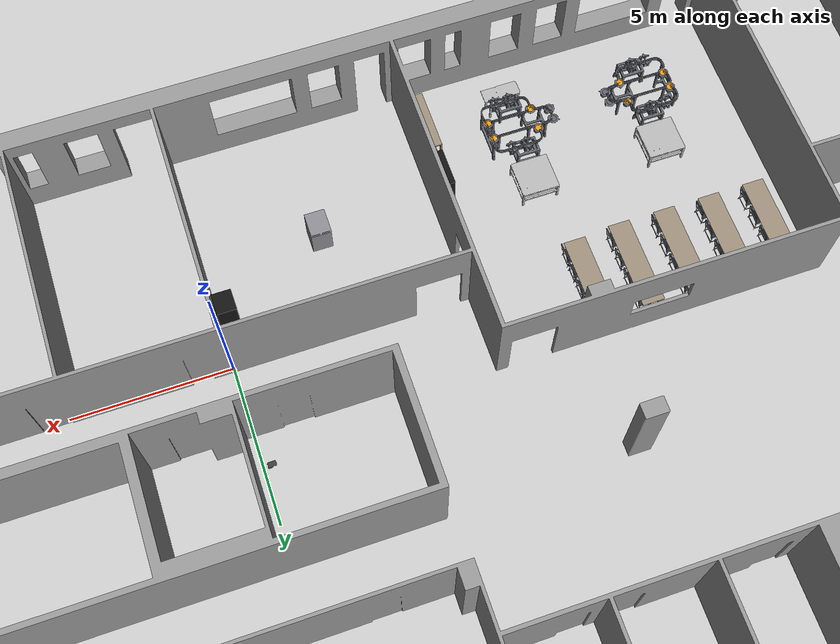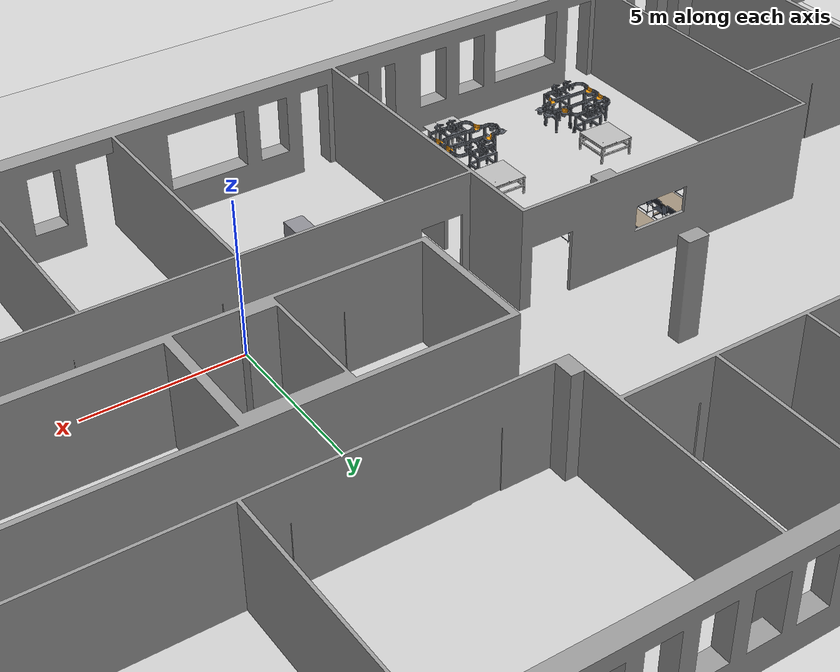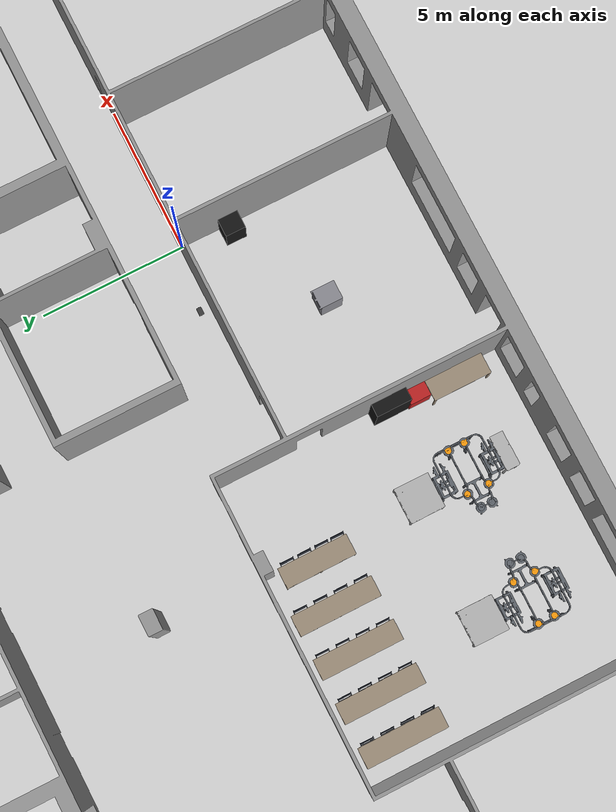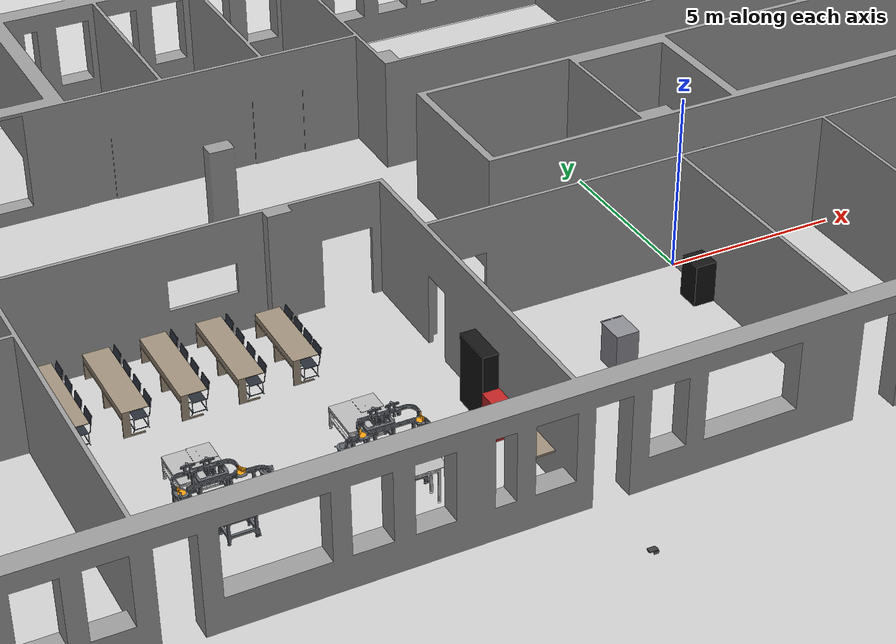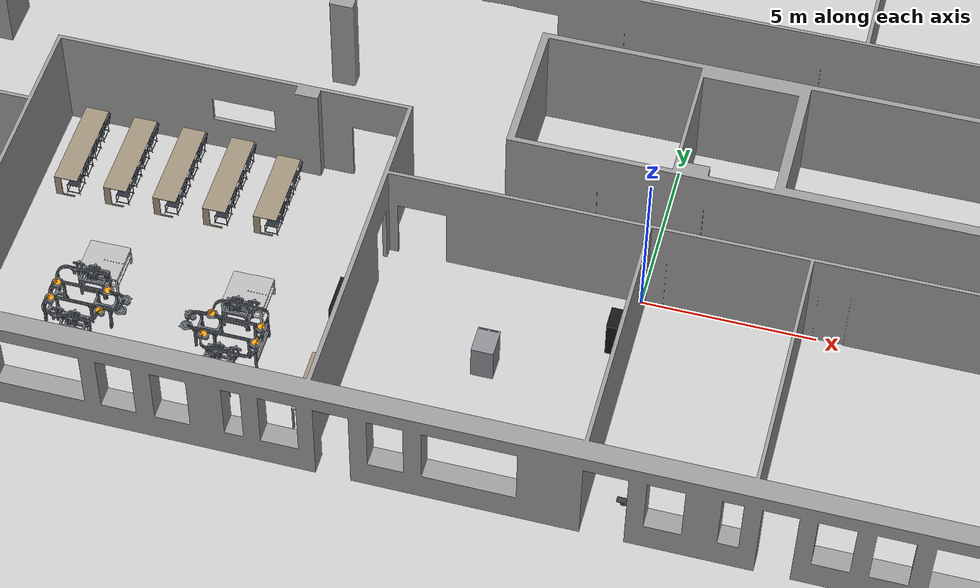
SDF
<sdf version="1.4">
 <world name="mfja_3rd_floor">
  <physics name="5ms" type="ignored">
   <max_step_size>0.005</max_step_size>
   <real_time_factor>1.0</real_time_factor>
  </physics>
  <plugin filename="gz-sim-physics-system" name="gz::sim::systems::Physics"/>
  <plugin filename="gz-sim-user-commands-system" name="gz::sim::systems::UserCommands"/>
  <plugin filename="gz-sim-scene-broadcaster-system" name="gz::sim::systems::SceneBroadcaster"/>
  <plugin filename="gz-sim-sensors-system" name="gz::sim::systems::Sensors">
   <render_engine>ogre2</render_engine>
  </plugin>
  <plugin filename="gz-sim-imu-system" name="gz::sim::systems::Imu"/>
  <gravity>0.0 0.0 -9.8</gravity>
  <scene>
   <ambient>0.4 0.4 0.4 1</ambient>
   <background>0.7 0.7 0.7 1</background>
   <shadows>false</shadows>
   <grid>false</grid>
   <origin_visual>false</origin_visual>
  </scene>
  <include><uri>model://sun</uri></include>
  <include><uri>model://ground_plane</uri></include>
  <model name="mfja_3rd_floor_walls">
   <include><uri>model://mfja_3rd_floor</uri></include>
   <pose>0 0 0 0 0 -1.57</pose>
  </model>
  <include>
   <uri>model://kuka_table</uri>
   <name>kuka_table_1</name>
   <pose>-10.6096 -6.0 0.5 -1.57 0 1.57</pose>
  </include>
  <include>
   <uri>model://table_yaskawa</uri>
   <name>yaskawa_table_1</name>
   <pose>-10.6436 -2.97 0.5 0 0 1.57</pose>
  </include>
  <include>
   <uri>model://table_yaskawa</uri>
   <name>yaskawa_table_2</name>
   <pose>-14.9162 -2.97 0.5 0 0 1.57</pose>
  </include>
  <include>
   <uri>model://cell_static_gauche_final</uri>
   <name>cell_static_gauche_final_1</name>
   <pose>-9.65 -3.6 0.317 0 0 3.14</pose>
  </include>
  <include>
   <uri>model://cell_static_droit_final</uri>
   <name>room315_cell_static_droit_final_1</name>
   <pose>-15.9718 -5.8001 0.32 0.0 0.0 0.0</pose>
  </include>
  <include>
   <uri>model://cell_path_left</uri>
   <name>room315_cell_path_left_1</name>
   <pose>-11.865 -5.56 1.05 0 0 0</pose>
  </include>
  <include>
   <uri>model://cell_path_right</uri>
   <name>room315_cell_path_right_1</name>
   <pose>-13.7598 -3.833 1.053 0 0 3.14</pose>
  </include>
  <include>
   <uri>model://room315_shuttle</uri>
   <name>room315_right_shuttle_1</name>
   <pose>0 0 -10 0 0 0</pose>
  </include>
  <include>
   <uri>model://room315_shuttle</uri>
   <name>room315_right_shuttle_2</name>
   <pose>0 0 -10 0 0 0</pose>
  </include>
  <include>
   <uri>model://room315_shuttle</uri>
   <name>room315_right_shuttle_3</name>
   <pose>0 0 -10 0 0 0</pose>
  </include>
  <include>
   <uri>model://room315_shuttle</uri>
   <name>room315_right_shuttle_4</name>
   <pose>0 0 -10 0 0 0</pose>
  </include>
  <include>
   <uri>model://room315_shuttle</uri>
   <name>room315_left_shuttle_1</name>
   <pose>0 0 -10 0 0 0</pose>
  </include>
  <include>
   <uri>model://rail_switch_3pos_droit_static_black</uri>
   <name>static_droit_switch_1</name>
   <pose>-13.770 -4.505 1.053 0 0 1.02</pose>
  </include>
  <include>
   <uri>model://rail_switch_3pos_droit_static_black</uri>
   <name>static_droit_switch_2</name>
   <pose>-13.775 -4.88 1.053 0 0 -0.02</pose>
  </include>
  <include>
   <uri>model://rail_switch_3pos_droit_static_black</uri>
   <name>static_gauche_switch_1</name>
   <pose>-11.848 -4.515 1.05 0 0 3.13319</pose>
  </include>
  <include>
   <uri>model://rail_switch_3pos_droit_static_black</uri>
   <name>static_gauche_switch_2</name>
   <pose>-11.849 -4.885 1.05 0 0 -2.13</pose>
  </include>
  <include>
   <uri>model://rail_switch_3pos_droit</uri>
   <name>A3_droit_switch</name>
   <pose>-15.802 -4.97 1.053 0 0 0.50666</pose>
  </include>
  <include>
   <uri>model://rail_switch_3pos_droit</uri>
   <name>A4_droit_switch</name>
   <pose>-14.34 -5.065 1.053 0 0 3.13</pose>
  </include>
  <include>
   <uri>model://rail_switch_3pos_droit</uri>
   <name>A1_droit_switch</name>
   <pose>-14.3368 -4.32 1.053 0 0 -2.1</pose>
  </include>
  <include>
   <uri>model://rail_switch_3pos_droit</uri>
   <name>A2_droit_switch</name>
   <pose>-15.802 -4.41 1.053 0 0 0.50666</pose>
  </include>
  <include>
   <uri>model://rail_switch_3pos_droit</uri>
   <name>A4_gauche_switch</name>
   <pose>-9.822 -4.982 1.05 0 0 -2.63653</pose>
  </include>
  <include>
   <uri>model://rail_switch_3pos_droit</uri>
   <name>A3_gauche_switch</name>
   <pose>-11.288 -5.071 1.05 0 0 1.04</pose>
  </include>
  <include>
   <uri>model://rail_switch_3pos_droit</uri>
   <name>A2_gauche_switch</name>
   <pose>-11.285 -4.329 1.05 0 0 -0.025</pose>
  </include>
  <include>
   <uri>model://rail_switch_3pos_droit</uri>
   <name>A1_gauche_switch</name>
   <pose>-9.822 -4.42 1.05 0 0 -2.63653</pose>
  </include>
  <include><uri>model://lab_table</uri><name>lab_table_1</name><pose>-17.0 0.87 0.0 0 0 -1.57</pose></include>
  <include><uri>model://lab_table</uri><name>lab_table_2</name><pose>-15.5 0.87 0.0 0 0 -1.57</pose></include>
  <include><uri>model://lab_table</uri><name>lab_table_3</name><pose>-14.0 0.87 0.0 0 0 -1.57</pose></include>
  <include><uri>model://lab_table</uri><name>lab_table_4</name><pose>-12.5 0.87 0.0 0 0 -1.57</pose></include>
  <include>
   <uri>model://lab_table_240cm</uri>
   <name>lab_table_5</name>
   <pose>-11.0 0.57 0.0 0 0 -1.57</pose>
  </include>
  <include><uri>model://lab_chair</uri><name>lab_chair_1</name><pose>-10.8 -0.15 0.0 0 0 0</pose></include>
  <include><uri>model://lab_chair</uri><name>lab_chair_2</name><pose>-10.8 0.4 0.0 0 0 0</pose></include>
  <include><uri>model://lab_chair</uri><name>lab_chair_3</name><pose>-10.8 1.0 0.0 0 0 0</pose></include>
  <include><uri>model://lab_chair</uri><name>lab_chair_4</name><pose>-10.8 1.6 0.0 0 0 0</pose></include>
  <include><uri>model://lab_chair</uri><name>lab_chair_5</name><pose>-12.3 -0.2 0.0 0 0 0</pose></include>
  <include><uri>model://lab_chair</uri><name>lab_chair_6</name><pose>-12.3 0.5 0.0 0 0 0</pose></include>
  <include><uri>model://lab_chair</uri><name>lab_chair_7</name><pose>-12.3 1.2 0.0 0 0 0</pose></include>
  <include><uri>model://lab_chair</uri><name>lab_chair_8</name><pose>-12.3 1.9 0.0 0 0 0</pose></include>
  <include><uri>model://lab_chair</uri><name>lab_chair_9</name><pose>-13.8 -0.2 0.0 0 0 0</pose></include>
  <include><uri>model://lab_chair</uri><name>lab_chair_10</name><pose>-13.8 0.5 0.0 0 0 0</pose></include>
  <include><uri>model://lab_chair</uri><name>lab_chair_11</name><pose>-13.8 1.2 0.0 0 0 0</pose></include>
  <include><uri>model://lab_chair</uri><name>lab_chair_12</name><pose>-13.8 1.9 0.0 0 0 0</pose></include>
  <include><uri>model://lab_chair</uri><name>lab_chair_13</name><pose>-15.3 -0.2 0.0 0 0 0</pose></include>
  <include><uri>model://lab_chair</uri><name>lab_chair_14</name><pose>-15.3 0.5 0.0 0 0 0</pose></include>
  <include><uri>model://lab_chair</uri><name>lab_chair_15</name><pose>-15.3 1.2 0.0 0 0 0</pose></include>
  <include><uri>model://lab_chair</uri><name>lab_chair_16</name><pose>-15.3 1.9 0.0 0 0 0</pose></include>
  <include><uri>model://lab_chair</uri><name>lab_chair_17</name><pose>-16.8 -0.2 0.0 0 0 0</pose></include>
  <include><uri>model://lab_chair</uri><name>lab_chair_18</name><pose>-16.8 0.5 0.0 0 0 0</pose></include>
  <include><uri>model://lab_chair</uri><name>lab_chair_19</name><pose>-16.8 1.2 0.0 0 0 0</pose></include>
  <include><uri>model://lab_chair</uri><name>lab_chair_20</name><pose>-16.8 1.9 0.0 0 0 0</pose></include>
  <include>
   <uri>model://room314_charging_ergotron</uri>
   <name>room314_charging_ergotron_1</name>
   <pose>-3.7 -3.3 0.0 0 0 1.57</pose>
  </include>
  <include>
   <uri>model://room314_tiagobox</uri>
   <name>room314_tiagobox_1</name>
   <pose>-0.3 -1.66 0.0 0 0 -1.57</pose>
  </include>
  <include>
   <uri>model://room115_closet115</uri>
   <name>room115_closet115_1</name>
   <pose>-7.75 -3.45 0.0 0 0 -1.57</pose>
  </include>
  <include>
   <uri>model://room115_table2000</uri>
   <name>room115_table2000_1</name>
   <pose>-7.85 -5.8 0.0 0 0 -1.57</pose>
  </include>
  <include>
   <uri>model://room115_tool_set</uri>
   <name>room115_tool_set_1</name>
   <pose>-7.75 -4.43 0.0 0 0 -1.57</pose>
  </include>
 </world>
</sdf>

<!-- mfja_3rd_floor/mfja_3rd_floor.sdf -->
<sdf version="1.4">
  <model name="mfja_3rd_floor">
    <static>1</static>
    <link name="link">

      <collision name="colision1">
        <pose>0 0 0 0 0 0</pose>
        <geometry>
          <mesh>
            <uri>model://mfja_3rd_floor/meshes/mfja_3rd_floor_v4.stl</uri>
	    <scale> 1 1 1 </scale>
          </mesh>
        </geometry>
        <surface>
          <bounce />
          <friction>
            <ode />
          </friction>
          <contact>
            <ode />
          </contact>
        </surface>
      </collision>

      <visual name="visual1">
        <pose>0 0 0 0 0 0</pose>
        <geometry>
          <mesh>
            <uri>model://mfja_3rd_floor/meshes/mfja_3rd_floor_v4.stl</uri>
	    <scale> 1 1 1 </scale>
          </mesh>
        </geometry>
        <material>
          <script>
            <uri>file://media/materials/scripts/gazebo.material</uri>
            <name>Gazebo/Grey</name>
          </script>
        </material>
      </visual>

      <velocity_decay>
        <linear>0.000000</linear>
        <angular>0.000000</angular>
      </velocity_decay>
      <self_collide>0</self_collide>
      <kinematic>0</kinematic>
      <gravity>1</gravity>
    </link>
  </model>
</sdf>

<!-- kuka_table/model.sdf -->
<sdf version="1.9">
  <model name="kuka_table">
    <static>true</static>
    <link name="kuka_table_link">
      <visual name="kuka_table_visual">
        <geometry>
          <mesh>
            <uri>model://kuka_table/meshes/kuka_table.stl</uri>
          </mesh>
        </geometry>
      </visual>
      <collision name="kuka_table_collision">
        <geometry>
          <mesh>
            <uri>model://kuka_table/meshes/kuka_table.stl</uri>
          </mesh>
        </geometry>
      </collision>
    </link>
  </model>
</sdf>

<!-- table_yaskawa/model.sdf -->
<sdf version="1.9">
  <model name="table_yaskawa">
    <static>true</static>
    <link name="table_yaskawa_link">
      <visual name="table_yaskawa_visual">
        <geometry>
          <mesh>
            <uri>model://table_yaskawa/meshes/table_yaskawa.stl</uri>
            <scale>0.001 0.001 0.001</scale>
          </mesh>
        </geometry>
      </visual>
      <collision name="table_yaskawa_collision">
        <geometry>
          <mesh>
            <uri>model://table_yaskawa/meshes/table_yaskawa.stl</uri>
            <scale>0.001 0.001 0.001</scale>
          </mesh>
        </geometry>
      </collision>
    </link>
  </model>
</sdf>

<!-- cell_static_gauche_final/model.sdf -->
<sdf version="1.9">
  <model name="cell_static_gauche_final">
    <static>true</static>
    <link name="cell_static_gauche_final_link">
      <visual name="cell_static_gauche_final_visual">
        <geometry>
          <mesh>
            <uri>model://cell_static_gauche_final/meshes/cell_static_gauche_final.STL</uri>
          </mesh>
        </geometry>
        <material>
          <ambient>0.38 0.40 0.43 1</ambient>
          <diffuse>0.38 0.40 0.43 1</diffuse>
          <specular>0.30 0.30 0.30 1</specular>
          <emissive>0 0 0 1</emissive>
        </material>
      </visual>
      <collision name="cell_static_gauche_final_collision">
        <geometry>
          <mesh>
            <uri>model://cell_static_gauche_final/meshes/cell_static_gauche_final.STL</uri>
          </mesh>
        </geometry>
      </collision>
    </link>
  </model>
</sdf>

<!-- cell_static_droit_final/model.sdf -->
<sdf version="1.9">
  <model name="cell_static_droit_final">
    <static>true</static>
    <link name="cell_static_droit_final_link">
      <visual name="cell_static_droit_final_visual">
        <geometry>
          <mesh>
            <uri>model://cell_static_droit_final/meshes/cell_static_droit_final.STL</uri>
          </mesh>
        </geometry>
        <material>
          <ambient>0.38 0.40 0.43 1</ambient>
          <diffuse>0.38 0.40 0.43 1</diffuse>
          <specular>0.30 0.30 0.30 1</specular>
          <emissive>0 0 0 1</emissive>
        </material>
      </visual>
      <collision name="cell_static_droit_final_collision">
        <geometry>
          <mesh>
            <uri>model://cell_static_droit_final/meshes/cell_static_droit_final.STL</uri>
          </mesh>
        </geometry>
      </collision>
    </link>
  </model>
</sdf>

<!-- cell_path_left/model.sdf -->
<sdf version="1.9">
  <model name="cell_path_left">
    <static>true</static>
    <link name="cell_path_left_link">
      <visual name="cell_path_left_visual">
        <geometry>
          <mesh>
            <uri>model://cell_path_left/meshes/CELL_PATH_LEFT.STL</uri>
          </mesh>
        </geometry>
        <material>
          <ambient>0.38 0.40 0.43 1</ambient>
          <diffuse>0.38 0.40 0.43 1</diffuse>
          <specular>0.30 0.30 0.30 1</specular>
          <emissive>0 0 0 1</emissive>
        </material>
      </visual>
      <collision name="cell_path_left_collision">
        <geometry>
          <mesh>
            <uri>model://cell_path_left/meshes/CELL_PATH_LEFT.STL</uri>
          </mesh>
        </geometry>
        <surface>
          <contact>
            <collide_bitmask>0x0001</collide_bitmask>
          </contact>
        </surface>
      </collision>
    </link>
  </model>
</sdf>

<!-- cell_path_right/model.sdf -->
<sdf version="1.9">
  <model name="cell_path_right">
    <static>true</static>
    <link name="cell_path_right_link">
      <visual name="cell_path_right_visual">
        <geometry>
          <mesh>
            <uri>model://cell_path_right/meshes/CELL_PATH_RIGHT.STL</uri>
          </mesh>
        </geometry>
        <material>
          <ambient>0.38 0.40 0.43 1</ambient>
          <diffuse>0.38 0.40 0.43 1</diffuse>
          <specular>0.30 0.30 0.30 1</specular>
          <emissive>0 0 0 1</emissive>
        </material>
      </visual>
      <collision name="cell_path_right_collision">
        <geometry>
          <mesh>
            <uri>model://cell_path_right/meshes/CELL_PATH_RIGHT.STL</uri>
          </mesh>
        </geometry>
        <surface>
          <friction>
            <ode>
              <mu>0.35</mu>
              <mu2>0.35</mu2>
            </ode>
            <bullet>
              <friction>0.35</friction>
              <friction2>0.35</friction2>
              <rolling_friction>0.01</rolling_friction>
            </bullet>
          </friction>
          <contact>
            <collide_bitmask>0x0001</collide_bitmask>
            <ode>
              <kp>2000000</kp>
              <kd>50</kd>
              <max_vel>0.1</max_vel>
              <min_depth>0.001</min_depth>
            </ode>
            <bullet>
              <kp>2000000</kp>
              <kd>50</kd>
            </bullet>
          </contact>
        </surface>
      </collision>
    </link>
  </model>
</sdf>

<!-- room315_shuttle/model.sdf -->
<sdf version="1.9">
  <model name="room315_shuttle">
    <static>false</static>
    <link name="room315_shuttle_link">
      <kinematic>true</kinematic>
      <gravity>false</gravity>
      <pose>0 0 0 0 0 0</pose>
      <inertial>
        <mass>0.1</mass>
        <inertia>
          <ixx>0.001</ixx>
          <ixy>0.0</ixy>
          <ixz>0.0</ixz>
          <iyy>0.001</iyy>
          <iyz>0.0</iyz>
          <izz>0.001</izz>
        </inertia>
      </inertial>
      <visual name="room315_shuttle_visual">
        <pose>-0.25 -0.100000024 -0.078499973 0 0 0</pose>
        <geometry>
          <mesh>
            <uri>model://room315_shuttle/meshes/shuttle.STL</uri>
          </mesh>
        </geometry>
        <material>
          <ambient>0.01 0.01 0.01 1</ambient>
          <diffuse>0.01 0.01 0.01 1</diffuse>
          <specular>0.20 0.20 0.20 1</specular>
          <emissive>0 0 0 1</emissive>
        </material>
      </visual>
      <collision name="room315_shuttle_robot_collision">
        <pose>-0.078417048 0 0 0 0 0</pose>
        <geometry>
          <box>
            <size>0.36 0.22 0.17</size>
          </box>
        </geometry>
        <surface>
          <contact>
            <!-- Visual/kinematic shuttle: ROS-side collision avoidance handles spacing. -->
            <collide_bitmask>0x0000</collide_bitmask>
          </contact>
        </surface>
      </collision>
    </link>
    <plugin
        filename="gz-sim-pose-publisher-system"
        name="gz::sim::systems::PosePublisher">
      <publish_model_pose>true</publish_model_pose>
      <publish_link_pose>true</publish_link_pose>
      <publish_collision_pose>false</publish_collision_pose>
      <publish_visual_pose>false</publish_visual_pose>
      <publish_nested_model_pose>false</publish_nested_model_pose>
      <update_frequency>30</update_frequency>
    </plugin>
  </model>
</sdf>

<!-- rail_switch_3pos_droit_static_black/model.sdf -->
<sdf version="1.9">
  <model name="rail_switch_3pos_droit_static_black">
    <static>true</static>
    <link name="blade_link">
      <visual name="blade_visual">
        <geometry>
          <mesh>
            <uri>model://rail_switch_3pos_droit/meshes/aiguillage3.stl</uri>
            <scale>39.37 39.37 39.37</scale>
          </mesh>
        </geometry>
        <material>
          <ambient>0.38 0.40 0.43 1</ambient>
          <diffuse>0.38 0.40 0.43 1</diffuse>
          <specular>0.30 0.30 0.30 1</specular>
          <emissive>0 0 0 1</emissive>
        </material>
      </visual>
      <collision name="blade_collision">
        <geometry>
          <mesh>
            <uri>model://rail_switch_3pos_droit/meshes/aiguillage3.stl</uri>
            <scale>39.37 39.37 39.37</scale>
          </mesh>
        </geometry>
        <surface>
          <friction>
            <ode>
              <mu>0.35</mu>
              <mu2>0.35</mu2>
            </ode>
            <bullet>
              <friction>0.35</friction>
              <friction2>0.35</friction2>
              <rolling_friction>0.005</rolling_friction>
            </bullet>
          </friction>
          <contact>
            <collide_bitmask>0x0001</collide_bitmask>
            <ode>
              <kp>2000000</kp>
              <kd>50</kd>
              <max_vel>0.1</max_vel>
              <min_depth>0.001</min_depth>
            </ode>
            <bullet>
              <kp>2000000</kp>
              <kd>50</kd>
            </bullet>
          </contact>
        </surface>
      </collision>
    </link>
  </model>
</sdf>

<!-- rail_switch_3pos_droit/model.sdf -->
<sdf version="1.9">
  <model name="rail_switch_3pos_droit">
    <static>true</static>
    <link name="blade_link">
      <kinematic>true</kinematic>
      <gravity>false</gravity>
      <inertial>
        <mass>0.1</mass>
        <inertia>
          <ixx>0.001</ixx>
          <ixy>0.0</ixy>
          <ixz>0.0</ixz>
          <iyy>0.001</iyy>
          <iyz>0.0</iyz>
          <izz>0.001</izz>
        </inertia>
      </inertial>

      <visual name="blade_visual">
        <geometry>
          <mesh>
            <uri>model://rail_switch_3pos_droit/meshes/aiguillage3.stl</uri>
            <scale>39.37 39.37 39.37</scale>
          </mesh>
        </geometry>
        <material>
          <ambient>1.0 0.62 0.05 1</ambient>
          <diffuse>1.0 0.62 0.05 1</diffuse>
          <specular>0.25 0.12 0.02 1</specular>
          <emissive>0.04 0.02 0.0 1</emissive>
        </material>
      </visual>
      <collision name="blade_collision">
        <geometry>
          <mesh>
            <uri>model://rail_switch_3pos_droit/meshes/aiguillage3.stl</uri>
            <scale>39.37 39.37 39.37</scale>
          </mesh>
        </geometry>
        <surface>
          <friction>
            <ode>
              <mu>0.35</mu>
              <mu2>0.35</mu2>
            </ode>
            <bullet>
              <friction>0.35</friction>
              <friction2>0.35</friction2>
              <rolling_friction>0.005</rolling_friction>
            </bullet>
          </friction>
          <contact>
            <collide_bitmask>0x0001</collide_bitmask>
            <ode>
              <kp>2000000</kp>
              <kd>50</kd>
              <max_vel>0.1</max_vel>
              <min_depth>0.001</min_depth>
            </ode>
            <bullet>
              <kp>2000000</kp>
              <kd>50</kd>
            </bullet>
          </contact>
        </surface>
      </collision>
    </link>
  </model>
</sdf>

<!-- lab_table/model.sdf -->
<sdf version="1.9">
  <model name="lab_table">
    <static>true</static>
    <link name="lab_table_link">
      <visual name="lab_table_visual">
        <pose>-1.4 -0.35 0.72 0 0 0</pose>
        <geometry>
          <mesh>
            <uri>model://lab_table/meshes/table.stl</uri>
          </mesh>
        </geometry>
        <material>
          <ambient>0.62 0.56 0.48 1.0</ambient>
          <diffuse>0.62 0.56 0.48 1.0</diffuse>
          <specular>0.12 0.12 0.12 1.0</specular>
          <emissive>0.0 0.0 0.0 0.0</emissive>
        </material>
      </visual>
      <collision name="lab_table_collision">
        <pose>-1.4 -0.35 0.72 0 0 0</pose>
        <geometry>
          <mesh>
            <uri>model://lab_table/meshes/table.stl</uri>
          </mesh>
        </geometry>
      </collision>
    </link>
  </model>
</sdf>

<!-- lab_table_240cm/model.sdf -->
<sdf version="1.9">
  <model name="lab_table_240cm">
    <static>true</static>
    <link name="lab_table_240cm_link">
      <visual name="lab_table_240cm_visual">
        <pose>-1.4 -0.35 0.72 0 0 0</pose>
        <geometry>
          <mesh>
            <uri>model://lab_table_240cm/meshes/table_240cm.stl</uri>
          </mesh>
        </geometry>
        <material>
          <ambient>0.62 0.56 0.48 1.0</ambient>
          <diffuse>0.62 0.56 0.48 1.0</diffuse>
          <specular>0.12 0.12 0.12 1.0</specular>
          <emissive>0.0 0.0 0.0 0.0</emissive>
        </material>
      </visual>
      <collision name="lab_table_240cm_collision">
        <pose>-1.4 -0.35 0.72 0 0 0</pose>
        <geometry>
          <mesh>
            <uri>model://lab_table_240cm/meshes/table_240cm.stl</uri>
          </mesh>
        </geometry>
      </collision>
    </link>
  </model>
</sdf>

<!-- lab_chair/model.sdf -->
<sdf version="1.9">
  <model name="lab_chair">
    <static>true</static>
    <link name="lab_chair_link">
      <visual name="lab_chair_visual">
        <pose>-0.26923 0.23 -0.00002 1.5708 0 0</pose>
        <geometry>
          <mesh>
            <uri>model://lab_chair/meshes/CHAIR.STL</uri>
            <scale>0.002 0.002 0.002</scale>
          </mesh>
        </geometry>
        <material>
          <ambient>0.16 0.18 0.22 1.0</ambient>
          <diffuse>0.16 0.18 0.22 1.0</diffuse>
          <specular>0.08 0.08 0.08 1.0</specular>
          <emissive>0.0 0.0 0.0 0.0</emissive>
        </material>
      </visual>
      <collision name="lab_chair_collision">
        <pose>-0.26923 0.23 -0.00002 1.5708 0 0</pose>
        <geometry>
          <mesh>
            <uri>model://lab_chair/meshes/CHAIR.STL</uri>
            <scale>0.002 0.002 0.002</scale>
          </mesh>
        </geometry>
      </collision>
    </link>
  </model>
</sdf>

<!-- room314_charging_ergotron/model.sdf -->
<sdf version="1.9">
  <model name="room314_charging_ergotron">
    <static>true</static>
    <link name="room314_charging_ergotron_link">
      <visual name="room314_charging_ergotron_visual">
        <pose>-0.4125 -0.32 0 0 0 0</pose>
        <geometry>
          <mesh>
            <uri>model://room314_charging_ergotron/meshes/charging_ergotron.stl</uri>
          </mesh>
        </geometry>
        <material>
          <ambient>0.55 0.55 0.58 1.0</ambient>
          <diffuse>0.55 0.55 0.58 1.0</diffuse>
          <specular>0.20 0.20 0.20 1.0</specular>
          <emissive>0.0 0.0 0.0 0.0</emissive>
        </material>
      </visual>
      <collision name="room314_charging_ergotron_collision">
        <pose>-0.4125 -0.32 0 0 0 0</pose>
        <geometry>
          <mesh>
            <uri>model://room314_charging_ergotron/meshes/charging_ergotron.stl</uri>
          </mesh>
        </geometry>
      </collision>
    </link>
  </model>
</sdf>

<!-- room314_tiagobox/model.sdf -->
<sdf version="1.9">
  <model name="room314_tiagobox">
    <static>true</static>
    <link name="room314_tiagobox_link">
      <visual name="room314_tiagobox_visual">
        <pose>-0.345 -0.305 0 0 0 0</pose>
        <geometry>
          <mesh>
            <uri>model://room314_tiagobox/meshes/tiagobox.stl</uri>
          </mesh>
        </geometry>
        <material>
          <ambient>0.08 0.08 0.08 1.0</ambient>
          <diffuse>0.08 0.08 0.08 1.0</diffuse>
          <specular>0.06 0.06 0.06 1.0</specular>
          <emissive>0.0 0.0 0.0 0.0</emissive>
        </material>
      </visual>
      <collision name="room314_tiagobox_collision">
        <pose>-0.345 -0.305 0 0 0 0</pose>
        <geometry>
          <mesh>
            <uri>model://room314_tiagobox/meshes/tiagobox.stl</uri>
          </mesh>
        </geometry>
      </collision>
    </link>
  </model>
</sdf>

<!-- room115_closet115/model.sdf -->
<sdf version="1.9">
  <model name="room115_closet115">
    <static>true</static>
    <link name="room115_closet115_link">
      <visual name="room115_closet115_visual">
        <pose>-0.6 -0.215 0 0 0 0</pose>
        <geometry>
          <mesh>
            <uri>model://room115_closet115/meshes/closet115.stl</uri>
          </mesh>
        </geometry>
        <material>
          <ambient>0.08 0.08 0.08 1.0</ambient>
          <diffuse>0.08 0.08 0.08 1.0</diffuse>
          <specular>0.06 0.06 0.06 1.0</specular>
          <emissive>0.0 0.0 0.0 0.0</emissive>
        </material>
      </visual>
      <collision name="room115_closet115_collision">
        <pose>-0.6 -0.215 0 0 0 0</pose>
        <geometry>
          <mesh>
            <uri>model://room115_closet115/meshes/closet115.stl</uri>
          </mesh>
        </geometry>
      </collision>
    </link>
  </model>
</sdf>

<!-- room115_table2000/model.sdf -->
<sdf version="1.9">
  <model name="room115_table2000">
    <static>true</static>
    <link name="room115_table2000_link">
      <visual name="room115_table2000_visual">
        <pose>-1.0 -0.375 0.9 0 0 0</pose>
        <geometry>
          <mesh>
            <uri>model://room115_table2000/meshes/table2000.stl</uri>
          </mesh>
        </geometry>
        <material>
          <ambient>0.62 0.56 0.48 1.0</ambient>
          <diffuse>0.62 0.56 0.48 1.0</diffuse>
          <specular>0.12 0.12 0.12 1.0</specular>
          <emissive>0.0 0.0 0.0 0.0</emissive>
        </material>
      </visual>
      <collision name="room115_table2000_collision">
        <pose>-1.0 -0.375 0.9 0 0 0</pose>
        <geometry>
          <mesh>
            <uri>model://room115_table2000/meshes/table2000.stl</uri>
          </mesh>
        </geometry>
      </collision>
    </link>
  </model>
</sdf>

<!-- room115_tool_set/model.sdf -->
<sdf version="1.9">
  <model name="room115_tool_set">
    <static>true</static>
    <link name="room115_tool_set_link">
      <visual name="room115_tool_set_visual">
        <pose>-0.36 -0.25 0 0 0 0</pose>
        <geometry>
          <mesh>
            <uri>model://room115_tool_set/meshes/tool_set.stl</uri>
          </mesh>
        </geometry>
        <material>
          <ambient>0.75 0.14 0.14 1.0</ambient>
          <diffuse>0.75 0.14 0.14 1.0</diffuse>
          <specular>0.16 0.16 0.16 1.0</specular>
          <emissive>0.0 0.0 0.0 0.0</emissive>
        </material>
      </visual>
      <collision name="room115_tool_set_collision">
        <pose>-0.36 -0.25 0 0 0 0</pose>
        <geometry>
          <mesh>
            <uri>model://room115_tool_set/meshes/tool_set.stl</uri>
          </mesh>
        </geometry>
      </collision>
    </link>
  </model>
</sdf>
